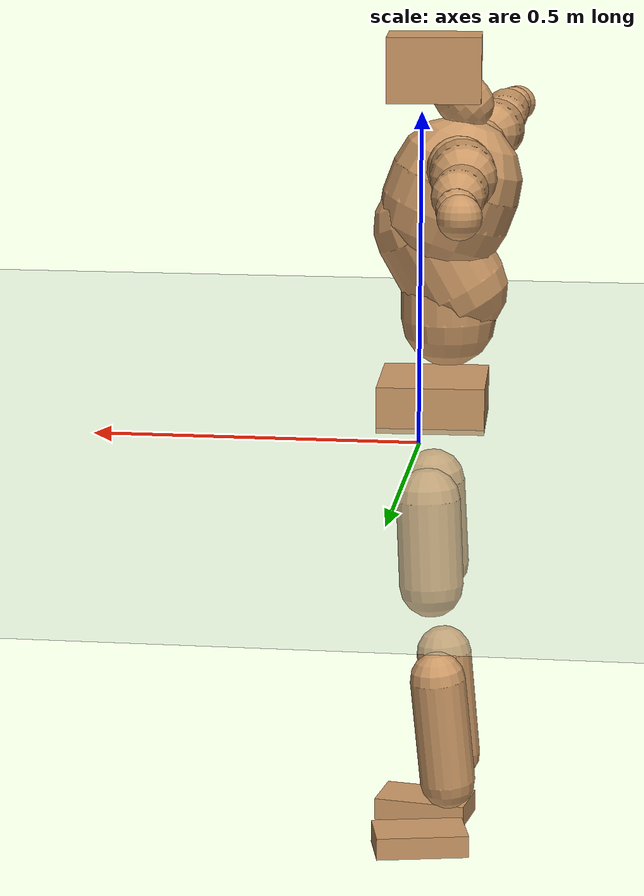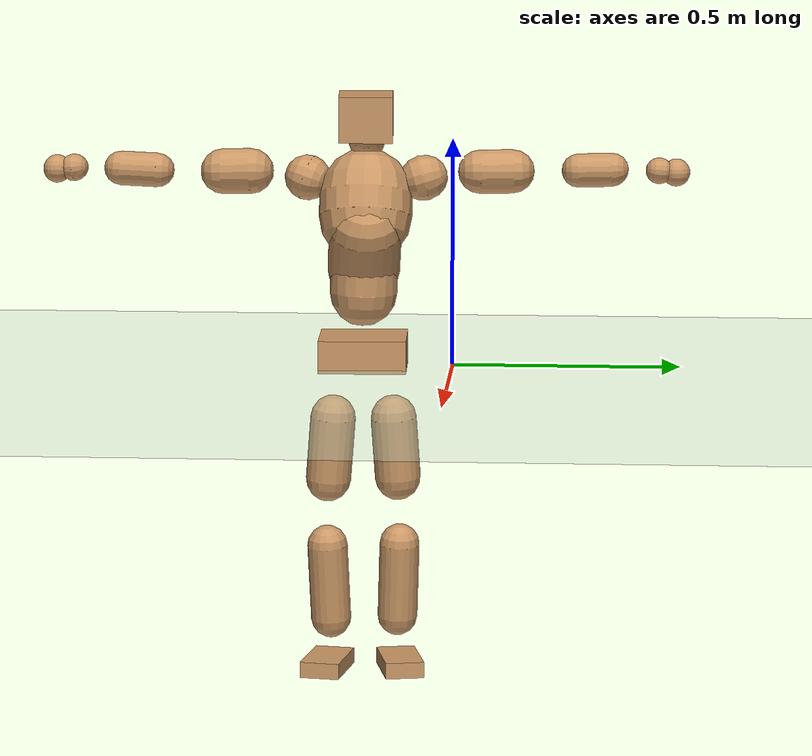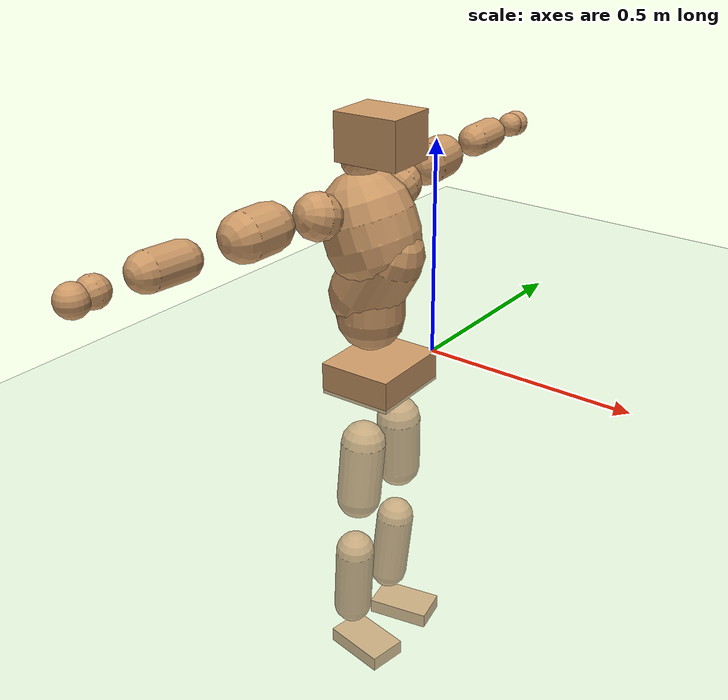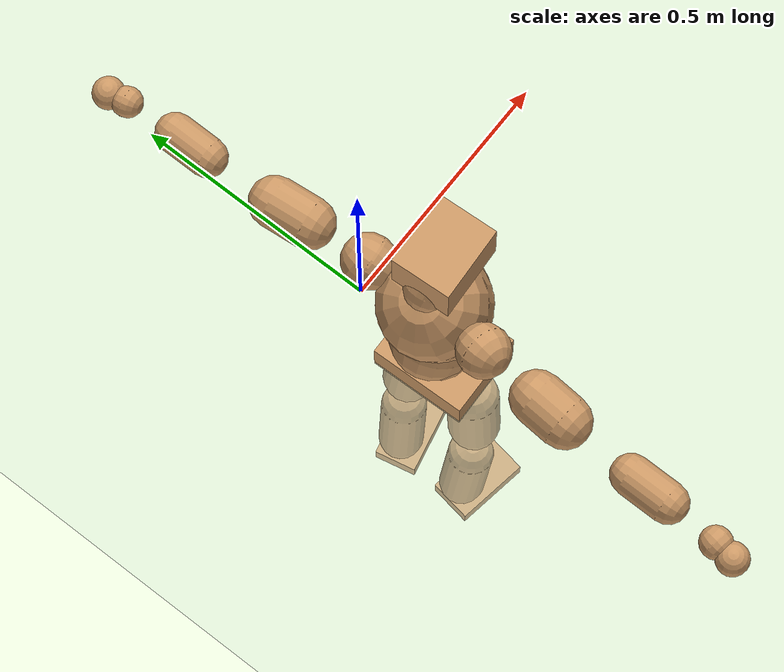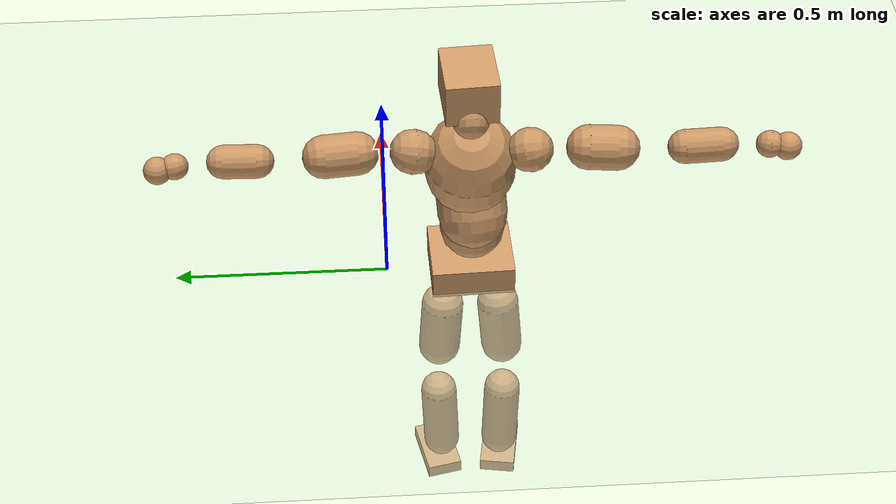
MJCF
<mujoco model="humanoid">
  <compiler coordinate="local" angle="radian"/>
  <default>
    <joint damping="0.0" armature="0.01" stiffness="0.0" limited="true"/>
    <geom conaffinity="1" condim="3" contype="7" margin="0.001" rgba="0.8 0.6 .4 1"/>
  </default>
  <asset>
    <texture type="skybox" builtin="gradient" rgb1=".4 .5 .6" rgb2="0 0 0" width="100" height="100"/>
    <texture builtin="flat" height="1278" mark="cross" markrgb="1 1 1" name="texgeom" random="0.01" rgb1="0.8 0.6 0.4" rgb2="0.8 0.6 0.4" type="cube" width="127"/>
    <texture builtin="checker" height="100" name="texplane" rgb1="0 0 0" rgb2="0.8 0.8 0.8" type="2d" width="100"/>
    <material name="MatPlane" reflectance="0.5" shininess="1" specular="1" texrepeat="60 60" texture="texplane"/>
    <material name="geom" texture="texgeom" texuniform="true"/>
  </asset>
  <worldbody>
    <light cutoff="100" diffuse="1 1 1" dir="-0 0 -1.3" directional="true" exponent="1" pos="0 0 1.3" specular=".1 .1 .1"/>
    <geom conaffinity="1" condim="3" name="floor" pos="0 0 0" rgba="0.8 0.9 0.8 1" size="100 100 .2" type="plane" material="MatPlane"/>
    <body name="Pelvis" pos="-0.0011 -0.1976 0.0375">
      <freejoint name="Pelvis"/>
      <geom type="box" contype="1" conaffinity="1" density="5359.374512" pos="-0.0033 -0.0001 -0.0113" size="0.0838 0.0965 0.0361" quat="0.9999 0.0000 0.0000 0.0152" name="Pelvis"/>
      <body name="L_Hip" pos="0.0017 0.0618 -0.079">
        <joint name="L_Hip_x" type="hinge" pos="0 0 0" axis="1 0 0" stiffness="1600" damping="160" armature="0.02" range="-180.0000 180.0000"/>
        <joint name="L_Hip_y" type="hinge" pos="0 0 0" axis="0 1 0" stiffness="1600" damping="160" armature="0.02" range="-180.0000 180.0000"/>
        <joint name="L_Hip_z" type="hinge" pos="0 0 0" axis="0 0 1" stiffness="1600" damping="160" armature="0.02" range="-180.0000 180.0000"/>
        <geom type="capsule" contype="1" conaffinity="1" density="2040.816327" size="0.0504" fromto="-0.0043 0.0054 -0.0801 -0.0115 0.0145 -0.2165" name="L_Hip"/>
        <body name="L_Knee" pos="-0.0158 0.0199 -0.2966">
          <joint name="L_Knee_x" type="hinge" pos="0 0 0" axis="1 0 0" stiffness="1600" damping="160" armature="0.02" range="-180.0000 180.0000"/>
          <joint name="L_Knee_y" type="hinge" pos="0 0 0" axis="0 1 0" stiffness="1600" damping="160" armature="0.02" range="-180.0000 180.0000"/>
          <joint name="L_Knee_z" type="hinge" pos="0 0 0" axis="0 0 1" stiffness="1600" damping="160" armature="0.02" range="-180.0000 180.0000"/>
          <geom type="capsule" contype="1" conaffinity="1" density="1234.567901" size="0.0443" fromto="-0.0075 -0.0023 -0.0739 -0.0248 -0.0077 -0.2436" name="L_Knee"/>
          <body name="L_Ankle" pos="-0.0323 -0.01 -0.3175">
            <joint name="L_Ankle_x" type="hinge" pos="0 0 0" axis="1 0 0" stiffness="1600" damping="160" armature="0.02" range="-180.0000 180.0000"/>
            <joint name="L_Ankle_y" type="hinge" pos="0 0 0" axis="0 1 0" stiffness="1600" damping="160" armature="0.02" range="-180.0000 180.0000"/>
            <joint name="L_Ankle_z" type="hinge" pos="0 0 0" axis="0 0 1" stiffness="1600" damping="160" armature="0.02" range="-180.0000 180.0000"/>
            <geom type="box" contype="1" conaffinity="1" density="999.999962" pos="0.0508 0.0108 -0.0241" size="0.0738 0.043 0.0179" quat="0.9945 0.0000 0.0000 0.1045" name="L_Ankle"/>
            <body name="L_Toe" pos="0.1017 0.0216 -0.0482">
              <joint name="L_Toe_x" type="hinge" pos="0 0 0" axis="1 0 0" stiffness="1000" damping="100" armature="0.02" range="-180.0000 180.0000"/>
              <joint name="L_Toe_y" type="hinge" pos="0 0 0" axis="0 1 0" stiffness="1000" damping="100" armature="0.02" range="-180.0000 180.0000"/>
              <joint name="L_Toe_z" type="hinge" pos="0 0 0" axis="0 0 1" stiffness="1000" damping="100" armature="0.02" range="-180.0000 180.0000"/>
              <geom type="box" contype="1" conaffinity="1" density="7978555.952708" pos="0.0000 0.0000 0.0247" size="0.0009 0.0022 0.0009" quat="0.9937 0.0000 0.0000 0.1117" name="L_Toe"/>
            </body>
          </body>
        </body>
      </body>
      <body name="R_Hip" pos="0.0043 -0.0607 -0.08">
        <joint name="R_Hip_x" type="hinge" pos="0 0 0" axis="1 0 0" stiffness="1600" damping="160" armature="0.02" range="-180.0000 180.0000"/>
        <joint name="R_Hip_y" type="hinge" pos="0 0 0" axis="0 1 0" stiffness="1600" damping="160" armature="0.02" range="-180.0000 180.0000"/>
        <joint name="R_Hip_z" type="hinge" pos="0 0 0" axis="0 0 1" stiffness="1600" damping="160" armature="0.02" range="-180.0000 180.0000"/>
        <geom type="capsule" contype="1" conaffinity="1" density="2040.816327" size="0.0499" fromto="-0.0042 -0.0064 -0.0796 -0.0115 -0.0177 -0.2208" name="R_Hip"/>
        <body name="R_Knee" pos="-0.0157 -0.0241 -0.3004">
          <joint name="R_Knee_x" type="hinge" pos="0 0 0" axis="1 0 0" stiffness="1600" damping="160" armature="0.02" range="-180.0000 180.0000"/>
          <joint name="R_Knee_y" type="hinge" pos="0 0 0" axis="0 1 0" stiffness="1600" damping="160" armature="0.02" range="-180.0000 180.0000"/>
          <joint name="R_Knee_z" type="hinge" pos="0 0 0" axis="0 0 1" stiffness="1600" damping="160" armature="0.02" range="-180.0000 180.0000"/>
          <geom type="capsule" contype="1" conaffinity="1" density="1234.567901" size="0.0448" fromto="-0.0073 0.0028 -0.0744 -0.0242 0.0093 -0.2453" name="R_Knee"/>
          <body name="R_Ankle" pos="-0.0316 0.0121 -0.3196">
            <joint name="R_Ankle_x" type="hinge" pos="0 0 0" axis="1 0 0" stiffness="1600" damping="160" armature="0.02" range="-180.0000 180.0000"/>
            <joint name="R_Ankle_y" type="hinge" pos="0 0 0" axis="0 1 0" stiffness="1600" damping="160" armature="0.02" range="-180.0000 180.0000"/>
            <joint name="R_Ankle_z" type="hinge" pos="0 0 0" axis="0 0 1" stiffness="1600" damping="160" armature="0.02" range="-180.0000 180.0000"/>
            <geom type="box" contype="1" conaffinity="1" density="1000.000034" pos="0.0527 -0.0085 -0.0192" size="0.075 0.0441 0.0177" quat="0.9968 0.0000 0.0000 -0.0800" name="R_Ankle"/>
            <body name="R_Toe" pos="0.1053 -0.017 -0.0384">
              <joint name="R_Toe_x" type="hinge" pos="0 0 0" axis="1 0 0" stiffness="1000" damping="100" armature="0.02" range="-180.0000 180.0000"/>
              <joint name="R_Toe_y" type="hinge" pos="0 0 0" axis="0 1 0" stiffness="1000" damping="100" armature="0.02" range="-180.0000 180.0000"/>
              <joint name="R_Toe_z" type="hinge" pos="0 0 0" axis="0 0 1" stiffness="1000" damping="100" armature="0.02" range="-180.0000 180.0000"/>
              <geom type="box" contype="1" conaffinity="1" density="7576271.068713" pos="0.0000 0.0000 0.0211" size="0.0009 0.0023 0.001" quat="0.9976 0.0000 0.0000 -0.0694" name="R_Toe"/>
            </body>
          </body>
        </body>
      </body>
      <body name="Torso" pos="-0.026 -0.0018 0.0912">
        <joint name="Torso_x" type="hinge" pos="0 0 0" axis="1 0 0" stiffness="2000" damping="200" armature="0.02" range="-180.0000 180.0000"/>
        <joint name="Torso_y" type="hinge" pos="0 0 0" axis="0 1 0" stiffness="2000" damping="200" armature="0.02" range="-180.0000 180.0000"/>
        <joint name="Torso_z" type="hinge" pos="0 0 0" axis="0 0 1" stiffness="2000" damping="200" armature="0.02" range="-180.0000 180.0000"/>
        <geom type="capsule" contype="1" conaffinity="1" density="2040.816327" size="0.0747" fromto="0.0007 0.0018 0.0747 0.0002 0.0006 0.0265" name="Torso"/>
        <body name="Spine" pos="0.0009 0.0024 0.1012">
          <joint name="Spine_x" type="hinge" pos="0 0 0" axis="1 0 0" stiffness="2000" damping="200" armature="0.02" range="-180.0000 180.0000"/>
          <joint name="Spine_y" type="hinge" pos="0 0 0" axis="0 1 0" stiffness="2000" damping="200" armature="0.02" range="-180.0000 180.0000"/>
          <joint name="Spine_z" type="hinge" pos="0 0 0" axis="0 0 1" stiffness="2000" damping="200" armature="0.02" range="-180.0000 180.0000"/>
          <geom type="capsule" contype="1" conaffinity="1" density="2040.816327" size="0.0799" fromto="0.0387 0.0056 0.0697 -0.0136 -0.0020 -0.0244" name="Spine"/>
          <body name="Chest" pos="0.0251 0.0037 0.0452">
            <joint name="Chest_x" type="hinge" pos="0 0 0" axis="1 0 0" stiffness="2000" damping="200" armature="0.02" range="-180.0000 180.0000"/>
            <joint name="Chest_y" type="hinge" pos="0 0 0" axis="0 1 0" stiffness="2000" damping="200" armature="0.02" range="-180.0000 180.0000"/>
            <joint name="Chest_z" type="hinge" pos="0 0 0" axis="0 0 1" stiffness="2000" damping="200" armature="0.02" range="-180.0000 180.0000"/>
            <geom type="capsule" contype="1" conaffinity="1" density="2040.816327" size="0.1024" fromto="-0.0356 -0.0004 0.0960 -0.0181 -0.0002 0.0489" name="Chest"/>
            <body name="Neck" pos="-0.067 0.0003 0.1985">
              <joint name="Neck_x" type="hinge" pos="0 0 0" axis="1 0 0" stiffness="1000" damping="100" armature="0.02" range="-180.0000 180.0000"/>
              <joint name="Neck_y" type="hinge" pos="0 0 0" axis="0 1 0" stiffness="1000" damping="100" armature="0.02" range="-180.0000 180.0000"/>
              <joint name="Neck_z" type="hinge" pos="0 0 0" axis="0 0 1" stiffness="1000" damping="100" armature="0.02" range="-180.0000 180.0000"/>
              <geom type="capsule" contype="1" conaffinity="1" density="1000" size="0.0414" fromto="0.0278 0.0004 0.0306 0.0159 0.0002 0.0176" name="Neck"/>
              <body name="Head" pos="0.0437 0.0006 0.0482">
                <joint name="Head_x" type="hinge" pos="0 0 0" axis="1 0 0" stiffness="1000" damping="100" armature="0.02" range="-180.0000 180.0000"/>
                <joint name="Head_y" type="hinge" pos="0 0 0" axis="0 1 0" stiffness="1000" damping="100" armature="0.02" range="-180.0000 180.0000"/>
                <joint name="Head_z" type="hinge" pos="0 0 0" axis="0 0 1" stiffness="1000" damping="100" armature="0.02" range="-180.0000 180.0000"/>
                <geom type="box" contype="1" conaffinity="1" density="2250.000102" pos="0.0229 0.0013 0.0251" size="0.0723 0.0589 0.0503" quat="0.9996 0.0000 0.0000 0.0287" name="Head"/>
              </body>
            </body>
            <body name="L_Thorax" pos="-0.0454 0.081 0.1196">
              <joint name="L_Thorax_x" type="hinge" pos="0 0 0" axis="1 0 0" stiffness="1000" damping="100" armature="0.02" range="-180.0000 180.0000"/>
              <joint name="L_Thorax_y" type="hinge" pos="0 0 0" axis="0 1 0" stiffness="1000" damping="100" armature="0.02" range="-180.0000 180.0000"/>
              <joint name="L_Thorax_z" type="hinge" pos="0 0 0" axis="0 0 1" stiffness="1000" damping="100" armature="0.02" range="-180.0000 180.0000"/>
              <geom type="capsule" contype="1" conaffinity="1" density="1000" size="0.0501" fromto="-0.0052 0.0480 0.0136 -0.0047 0.0430 0.0122" name="L_Thorax"/>
              <body name="L_Shoulder" pos="-0.0099 0.0909 0.0257">
                <joint name="L_Shoulder_x" type="hinge" pos="0 0 0" axis="1 0 0" stiffness="1000" damping="100" armature="0.02" range="-720.0000 720.0000"/>
                <joint name="L_Shoulder_y" type="hinge" pos="0 0 0" axis="0 1 0" stiffness="1000" damping="100" armature="0.02" range="-720.0000 720.0000"/>
                <joint name="L_Shoulder_z" type="hinge" pos="0 0 0" axis="0 0 1" stiffness="1000" damping="100" armature="0.02" range="-720.0000 720.0000"/>
                <geom type="capsule" contype="1" conaffinity="1" density="1000" size="0.0482" fromto="-0.0078 0.0778 0.0002 -0.0150 0.1494 0.0004" name="L_Shoulder"/>
                <body name="L_Elbow" pos="-0.0228 0.2272 0.0005">
                  <joint name="L_Elbow_x" type="hinge" pos="0 0 0" axis="1 0 0" stiffness="1000" damping="100" armature="0.02" range="-720.0000 720.0000"/>
                  <joint name="L_Elbow_y" type="hinge" pos="0 0 0" axis="0 1 0" stiffness="1000" damping="100" armature="0.02" range="-720.0000 720.0000"/>
                  <joint name="L_Elbow_z" type="hinge" pos="0 0 0" axis="0 0 1" stiffness="1000" damping="100" armature="0.02" range="-720.0000 720.0000"/>
                  <geom type="capsule" contype="1" conaffinity="1" density="1000" size="0.0373" fromto="-0.0004 0.0673 0.0020 -0.0008 0.1396 0.0042" name="L_Elbow"/>
                  <body name="L_Wrist" pos="-0.0012 0.2069 0.0062">
                    <joint name="L_Wrist_x" type="hinge" pos="0 0 0" axis="1 0 0" stiffness="600" damping="60" armature="0.02" range="-180.0000 180.0000"/>
                    <joint name="L_Wrist_y" type="hinge" pos="0 0 0" axis="0 1 0" stiffness="600" damping="60" armature="0.02" range="-180.0000 180.0000"/>
                    <joint name="L_Wrist_z" type="hinge" pos="0 0 0" axis="0 0 1" stiffness="600" damping="60" armature="0.02" range="-180.0000 180.0000"/>
                    <geom type="capsule" contype="1" conaffinity="1" density="1000" size="0.0288" fromto="-0.0059 0.0365 -0.0041 -0.0062 0.0384 -0.0043" name="L_Wrist"/>
                    <body name="L_Hand" pos="-0.0122 0.0749 -0.0085">
                      <joint name="L_Hand_x" type="hinge" pos="0 0 0" axis="1 0 0" stiffness="600" damping="60" armature="0.02" range="-180.0000 180.0000"/>
                      <joint name="L_Hand_y" type="hinge" pos="0 0 0" axis="0 1 0" stiffness="600" damping="60" armature="0.02" range="-180.0000 180.0000"/>
                      <joint name="L_Hand_z" type="hinge" pos="0 0 0" axis="0 0 1" stiffness="600" damping="60" armature="0.02" range="-180.0000 180.0000"/>
                      <geom type="sphere" contype="1" conaffinity="1" density="1000" size="0.0304" pos="0.0000 0.0000 0.0000" name="L_Hand"/>
                    </body>
                  </body>
                </body>
              </body>
            </body>
            <body name="R_Thorax" pos="-0.0486 -0.0832 0.1167">
              <joint name="R_Thorax_x" type="hinge" pos="0 0 0" axis="1 0 0" stiffness="1000" damping="100" armature="0.02" range="-180.0000 180.0000"/>
              <joint name="R_Thorax_y" type="hinge" pos="0 0 0" axis="0 1 0" stiffness="1000" damping="100" armature="0.02" range="-180.0000 180.0000"/>
              <joint name="R_Thorax_z" type="hinge" pos="0 0 0" axis="0 0 1" stiffness="1000" damping="100" armature="0.02" range="-180.0000 180.0000"/>
              <geom type="capsule" contype="1" conaffinity="1" density="1000" size="0.05" fromto="-0.0076 -0.0461 0.0135 -0.0080 -0.0480 0.0141" name="R_Thorax"/>
              <body name="R_Shoulder" pos="-0.0156 -0.0941 0.0276">
                <joint name="R_Shoulder_x" type="hinge" pos="0 0 0" axis="1 0 0" stiffness="1000" damping="100" armature="0.02" range="-720.0000 720.0000"/>
                <joint name="R_Shoulder_y" type="hinge" pos="0 0 0" axis="0 1 0" stiffness="1000" damping="100" armature="0.02" range="-720.0000 720.0000"/>
                <joint name="R_Shoulder_z" type="hinge" pos="0 0 0" axis="0 0 1" stiffness="1000" damping="100" armature="0.02" range="-720.0000 720.0000"/>
                <geom type="capsule" contype="1" conaffinity="1" density="1000" size="0.0503" fromto="-0.0052 -0.0801 -0.0022 -0.0093 -0.1420 -0.0039" name="R_Shoulder"/>
                <body name="R_Elbow" pos="-0.0145 -0.2221 -0.0062">
                  <joint name="R_Elbow_x" type="hinge" pos="0 0 0" axis="1 0 0" stiffness="1000" damping="100" armature="0.02" range="-720.0000 720.0000"/>
                  <joint name="R_Elbow_y" type="hinge" pos="0 0 0" axis="0 1 0" stiffness="1000" damping="100" armature="0.02" range="-720.0000 720.0000"/>
                  <joint name="R_Elbow_z" type="hinge" pos="0 0 0" axis="0 0 1" stiffness="1000" damping="100" armature="0.02" range="-720.0000 720.0000"/>
                  <geom type="capsule" contype="1" conaffinity="1" density="1000" size="0.0381" fromto="-0.0008 -0.0681 0.0032 -0.0018 -0.1481 0.0069" name="R_Elbow"/>
                  <body name="R_Wrist" pos="-0.0026 -0.2161 0.01">
                    <joint name="R_Wrist_x" type="hinge" pos="0 0 0" axis="1 0 0" stiffness="600" damping="60" armature="0.02" range="-180.0000 180.0000"/>
                    <joint name="R_Wrist_y" type="hinge" pos="0 0 0" axis="0 1 0" stiffness="600" damping="60" armature="0.02" range="-180.0000 180.0000"/>
                    <joint name="R_Wrist_z" type="hinge" pos="0 0 0" axis="0 0 1" stiffness="600" damping="60" armature="0.02" range="-180.0000 180.0000"/>
                    <geom type="capsule" contype="1" conaffinity="1" density="1000" size="0.0301" fromto="-0.0048 -0.0376 -0.0033 -0.0051 -0.0396 -0.0035" name="R_Wrist"/>
                    <body name="R_Hand" pos="-0.0099 -0.0772 -0.0069">
                      <joint name="R_Hand_x" type="hinge" pos="0 0 0" axis="1 0 0" stiffness="600" damping="60" armature="0.02" range="-180.0000 180.0000"/>
                      <joint name="R_Hand_y" type="hinge" pos="0 0 0" axis="0 1 0" stiffness="600" damping="60" armature="0.02" range="-180.0000 180.0000"/>
                      <joint name="R_Hand_z" type="hinge" pos="0 0 0" axis="0 0 1" stiffness="600" damping="60" armature="0.02" range="-180.0000 180.0000"/>
                      <geom type="sphere" contype="1" conaffinity="1" density="1000" size="0.0312" pos="0.0000 0.0000 0.0000" name="R_Hand"/>
                    </body>
                  </body>
                </body>
              </body>
            </body>
          </body>
        </body>
      </body>
    </body>
  </worldbody>
  <actuator>
    <motor name="L_Hip_x" joint="L_Hip_x" gear="500"/>
    <motor name="L_Hip_y" joint="L_Hip_y" gear="500"/>
    <motor name="L_Hip_z" joint="L_Hip_z" gear="500"/>
    <motor name="L_Knee_x" joint="L_Knee_x" gear="500"/>
    <motor name="L_Knee_y" joint="L_Knee_y" gear="500"/>
    <motor name="L_Knee_z" joint="L_Knee_z" gear="500"/>
    <motor name="L_Ankle_x" joint="L_Ankle_x" gear="500"/>
    <motor name="L_Ankle_y" joint="L_Ankle_y" gear="500"/>
    <motor name="L_Ankle_z" joint="L_Ankle_z" gear="500"/>
    <motor name="L_Toe_x" joint="L_Toe_x" gear="500"/>
    <motor name="L_Toe_y" joint="L_Toe_y" gear="500"/>
    <motor name="L_Toe_z" joint="L_Toe_z" gear="500"/>
    <motor name="R_Hip_x" joint="R_Hip_x" gear="500"/>
    <motor name="R_Hip_y" joint="R_Hip_y" gear="500"/>
    <motor name="R_Hip_z" joint="R_Hip_z" gear="500"/>
    <motor name="R_Knee_x" joint="R_Knee_x" gear="500"/>
    <motor name="R_Knee_y" joint="R_Knee_y" gear="500"/>
    <motor name="R_Knee_z" joint="R_Knee_z" gear="500"/>
    <motor name="R_Ankle_x" joint="R_Ankle_x" gear="500"/>
    <motor name="R_Ankle_y" joint="R_Ankle_y" gear="500"/>
    <motor name="R_Ankle_z" joint="R_Ankle_z" gear="500"/>
    <motor name="R_Toe_x" joint="R_Toe_x" gear="500"/>
    <motor name="R_Toe_y" joint="R_Toe_y" gear="500"/>
    <motor name="R_Toe_z" joint="R_Toe_z" gear="500"/>
    <motor name="Torso_x" joint="Torso_x" gear="500"/>
    <motor name="Torso_y" joint="Torso_y" gear="500"/>
    <motor name="Torso_z" joint="Torso_z" gear="500"/>
    <motor name="Spine_x" joint="Spine_x" gear="500"/>
    <motor name="Spine_y" joint="Spine_y" gear="500"/>
    <motor name="Spine_z" joint="Spine_z" gear="500"/>
    <motor name="Chest_x" joint="Chest_x" gear="500"/>
    <motor name="Chest_y" joint="Chest_y" gear="500"/>
    <motor name="Chest_z" joint="Chest_z" gear="500"/>
    <motor name="Neck_x" joint="Neck_x" gear="500"/>
    <motor name="Neck_y" joint="Neck_y" gear="500"/>
    <motor name="Neck_z" joint="Neck_z" gear="500"/>
    <motor name="Head_x" joint="Head_x" gear="500"/>
    <motor name="Head_y" joint="Head_y" gear="500"/>
    <motor name="Head_z" joint="Head_z" gear="500"/>
    <motor name="L_Thorax_x" joint="L_Thorax_x" gear="500"/>
    <motor name="L_Thorax_y" joint="L_Thorax_y" gear="500"/>
    <motor name="L_Thorax_z" joint="L_Thorax_z" gear="500"/>
    <motor name="L_Shoulder_x" joint="L_Shoulder_x" gear="500"/>
    <motor name="L_Shoulder_y" joint="L_Shoulder_y" gear="500"/>
    <motor name="L_Shoulder_z" joint="L_Shoulder_z" gear="500"/>
    <motor name="L_Elbow_x" joint="L_Elbow_x" gear="500"/>
    <motor name="L_Elbow_y" joint="L_Elbow_y" gear="500"/>
    <motor name="L_Elbow_z" joint="L_Elbow_z" gear="500"/>
    <motor name="L_Wrist_x" joint="L_Wrist_x" gear="500"/>
    <motor name="L_Wrist_y" joint="L_Wrist_y" gear="500"/>
    <motor name="L_Wrist_z" joint="L_Wrist_z" gear="500"/>
    <motor name="L_Hand_x" joint="L_Hand_x" gear="500"/>
    <motor name="L_Hand_y" joint="L_Hand_y" gear="500"/>
    <motor name="L_Hand_z" joint="L_Hand_z" gear="500"/>
    <motor name="R_Thorax_x" joint="R_Thorax_x" gear="500"/>
    <motor name="R_Thorax_y" joint="R_Thorax_y" gear="500"/>
    <motor name="R_Thorax_z" joint="R_Thorax_z" gear="500"/>
    <motor name="R_Shoulder_x" joint="R_Shoulder_x" gear="500"/>
    <motor name="R_Shoulder_y" joint="R_Shoulder_y" gear="500"/>
    <motor name="R_Shoulder_z" joint="R_Shoulder_z" gear="500"/>
    <motor name="R_Elbow_x" joint="R_Elbow_x" gear="500"/>
    <motor name="R_Elbow_y" joint="R_Elbow_y" gear="500"/>
    <motor name="R_Elbow_z" joint="R_Elbow_z" gear="500"/>
    <motor name="R_Wrist_x" joint="R_Wrist_x" gear="500"/>
    <motor name="R_Wrist_y" joint="R_Wrist_y" gear="500"/>
    <motor name="R_Wrist_z" joint="R_Wrist_z" gear="500"/>
    <motor name="R_Hand_x" joint="R_Hand_x" gear="500"/>
    <motor name="R_Hand_y" joint="R_Hand_y" gear="500"/>
    <motor name="R_Hand_z" joint="R_Hand_z" gear="500"/>
  </actuator>
  <contact>
    <exclude body1="Torso" body2="Chest"/>
    <exclude body1="Head" body2="Chest"/>
    <exclude body1="R_Knee" body2="R_Toe"/>
    <exclude body1="R_Knee" body2="L_Ankle"/>
    <exclude body1="R_Knee" body2="L_Toe"/>
    <exclude body1="L_Knee" body2="L_Toe"/>
    <exclude body1="L_Knee" body2="R_Ankle"/>
    <exclude body1="L_Knee" body2="R_Toe"/>
    <exclude body1="L_Shoulder" body2="Chest"/>
    <exclude body1="R_Shoulder" body2="Chest"/>
  </contact>
  <sensor/>
  <size njmax="700" nconmax="700"/>
</mujoco>
